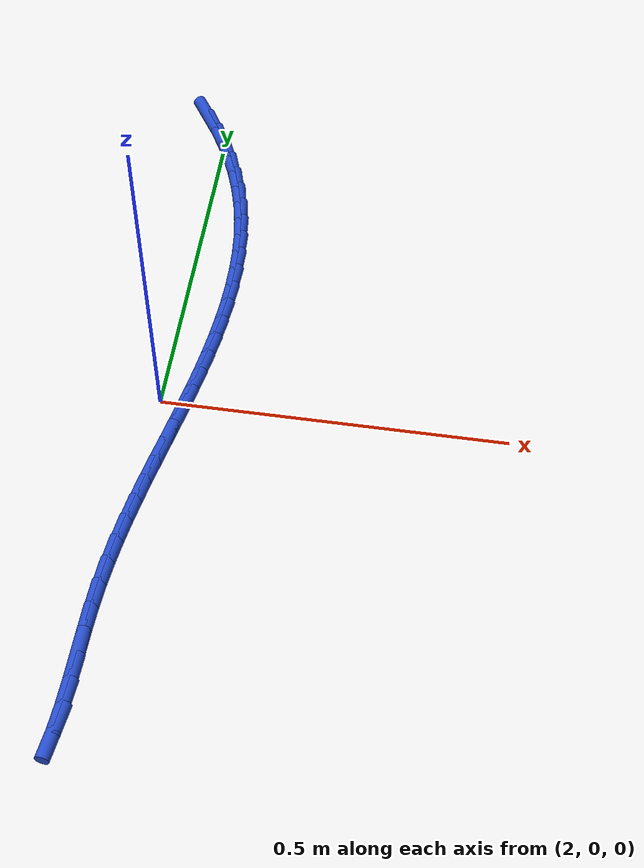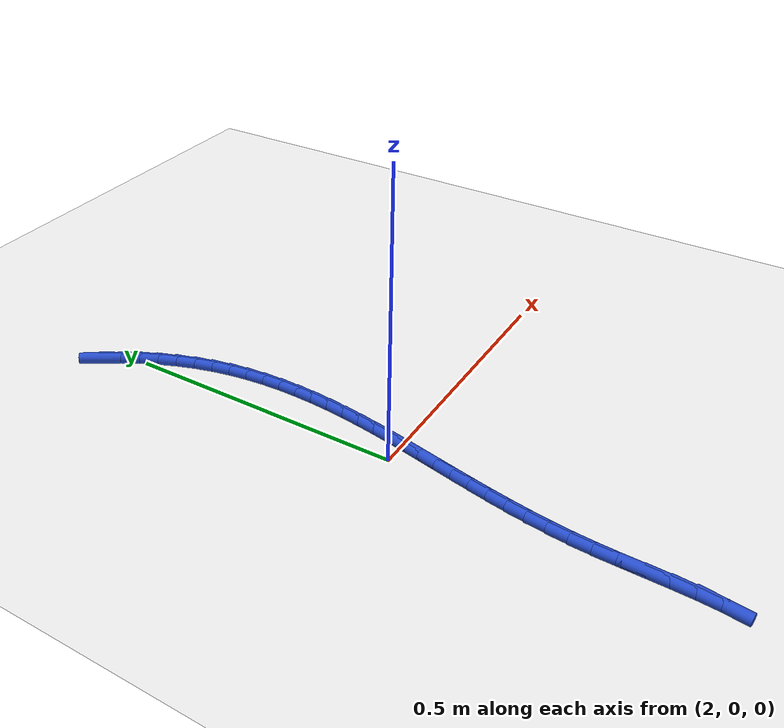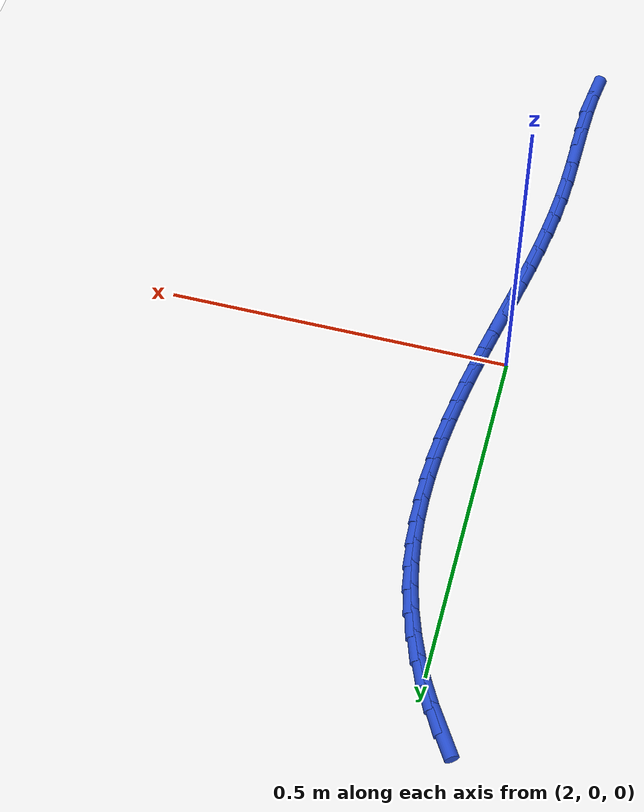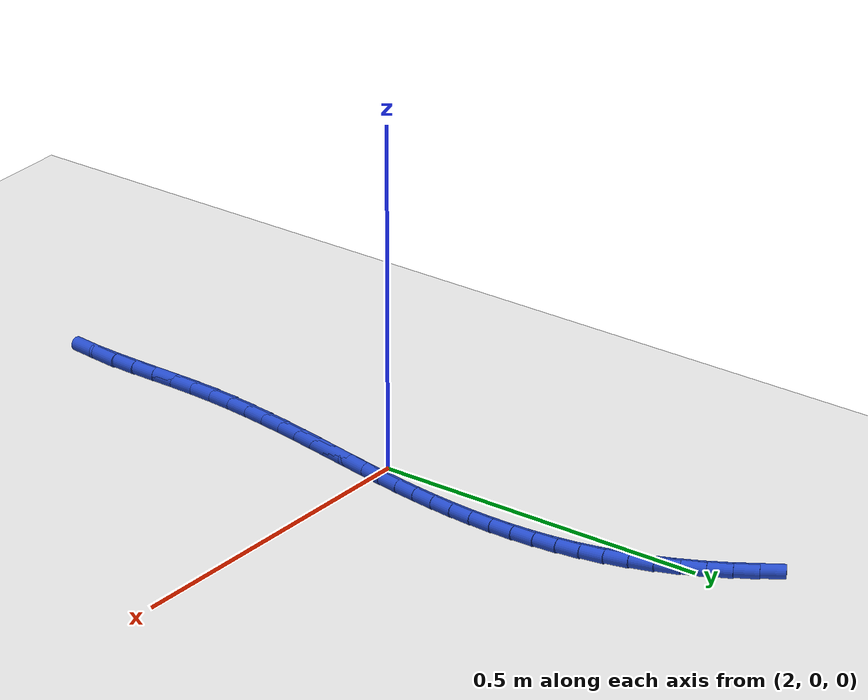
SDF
<sdf version="1.6">
 <world name="default">
  <model name="ground_plane">
   <static>1</static>
   <link name="link">
    <collision name="collision">
     <geometry><plane><normal>0 0 1</normal><size>100 100</size></plane></geometry>
     <surface><friction><ode><mu>100</mu><mu2>50</mu2></ode></friction></surface>
    </collision>
    <visual name="visual">
     <cast_shadows>0</cast_shadows>
     <geometry><plane><normal>0 0 1</normal><size>100 100</size></plane></geometry>
     <material>
      <script><uri>file://media/materials/scripts/gazebo.material</uri><name>Gazebo/WhiteGlow</name></script>
     </material>
    </visual>
   </link>
  </model>
  <model name="line">
   <link name="link_82">
    <pose>1.9631797170864609 0.5694126919476594 0.01 0 1.57 -0.9943159922002318</pose>
    <collision name="collision">
     <geometry><cylinder><radius>0.01</radius><length>0.08</length></cylinder></geometry>
    </collision>
    <visual name="visual">
     <material>
      <script><name>Gazebo/Blue</name><uri>file://media/materials/scripts/gazebo.material</uri></script>
     </material>
     <geometry><cylinder><radius>0.01</radius><length>0.08</length></cylinder></geometry>
    </visual>
   </link>
   <link name="link_83">
    <pose>1.9816686862494004 0.5409746662769291 0.01 0 1.57 -1.0533366605226369</pose>
    <collision name="collision">
     <geometry><cylinder><radius>0.01</radius><length>0.08</length></cylinder></geometry>
    </collision>
    <visual name="visual">
     <material>
      <script><name>Gazebo/Blue</name><uri>file://media/materials/scripts/gazebo.material</uri></script>
     </material>
     <geometry><cylinder><radius>0.01</radius><length>0.08</length></cylinder></geometry>
    </visual>
   </link>
   <link name="link_84">
    <pose>1.998499824800533 0.5114045189619716 0.01 0 1.57 -1.1124609755352233</pose>
    <collision name="collision">
     <geometry><cylinder><radius>0.01</radius><length>0.08</length></cylinder></geometry>
    </collision>
    <visual name="visual">
     <material>
      <script><name>Gazebo/Blue</name><uri>file://media/materials/scripts/gazebo.material</uri></script>
     </material>
     <geometry><cylinder><radius>0.01</radius><length>0.08</length></cylinder></geometry>
    </visual>
   </link>
   <link name="link_85">
    <pose>2.013576410772987 0.4808465893023069 0.01 0 1.57 -1.1721743187319096</pose>
    <collision name="collision">
     <geometry><cylinder><radius>0.01</radius><length>0.08</length></cylinder></geometry>
    </collision>
    <visual name="visual">
     <material>
      <script><name>Gazebo/Blue</name><uri>file://media/materials/scripts/gazebo.material</uri></script>
     </material>
     <geometry><cylinder><radius>0.01</radius><length>0.08</length></cylinder></geometry>
    </visual>
   </link>
   <link name="link_86">
    <pose>2.0268017221998904 0.4494452165974564 0.01 0 1.57 -1.2329522697435127</pose>
    <collision name="collision">
     <geometry><cylinder><radius>0.01</radius><length>0.08</length></cylinder></geometry>
    </collision>
    <visual name="visual">
     <material>
      <script><name>Gazebo/Blue</name><uri>file://media/materials/scripts/gazebo.material</uri></script>
     </material>
     <geometry><cylinder><radius>0.01</radius><length>0.08</length></cylinder></geometry>
    </visual>
   </link>
   <link name="link_87">
    <pose>2.0380790371143713 0.4173447401469409 0.01 0 1.57 -1.2952584561825826</pose>
    <collision name="collision">
     <geometry><cylinder><radius>0.01</radius><length>0.08</length></cylinder></geometry>
    </collision>
    <visual name="visual">
     <material>
      <script><name>Gazebo/Blue</name><uri>file://media/materials/scripts/gazebo.material</uri></script>
     </material>
     <geometry><cylinder><radius>0.01</radius><length>0.08</length></cylinder></geometry>
    </visual>
   </link>
   <link name="link_88">
    <pose>2.0473116335495587 0.38468949925028156 0.01 0 1.57 -1.358745325961788</pose>
    <collision name="collision">
     <geometry><cylinder><radius>0.01</radius><length>0.08</length></cylinder></geometry>
    </collision>
    <visual name="visual">
     <material>
      <script><name>Gazebo/Blue</name><uri>file://media/materials/scripts/gazebo.material</uri></script>
     </material>
     <geometry><cylinder><radius>0.01</radius><length>0.08</length></cylinder></geometry>
    </visual>
   </link>
   <link name="link_89">
    <pose>2.054431736173441 0.35161697733192565 0.01 0 1.57 -1.4190527988008783</pose>
    <collision name="collision">
     <geometry><cylinder><radius>0.01</radius><length>0.08</length></cylinder></geometry>
    </collision>
    <visual name="visual">
     <material>
      <script><name>Gazebo/Blue</name><uri>file://media/materials/scripts/gazebo.material</uri></script>
     </material>
     <geometry><cylinder><radius>0.01</radius><length>0.08</length></cylinder></geometry>
    </visual>
   </link>
   <link name="link_90">
    <pose>2.059537967593668 0.3182252472426111 0.01 0 1.57 -1.4744372502124479</pose>
    <collision name="collision">
     <geometry><cylinder><radius>0.01</radius><length>0.08</length></cylinder></geometry>
    </collision>
    <visual name="visual">
     <material>
      <script><name>Gazebo/Blue</name><uri>file://media/materials/scripts/gazebo.material</uri></script>
     </material>
     <geometry><cylinder><radius>0.01</radius><length>0.08</length></cylinder></geometry>
    </visual>
   </link>
   <link name="link_91">
    <pose>2.0627882926522294 0.28459832690243647 0.01 0 1.57 -1.5248682104541376</pose>
    <collision name="collision">
     <geometry><cylinder><radius>0.01</radius><length>0.08</length></cylinder></geometry>
    </collision>
    <visual name="visual">
     <material>
      <script><name>Gazebo/Blue</name><uri>file://media/materials/scripts/gazebo.material</uri></script>
     </material>
     <geometry><cylinder><radius>0.01</radius><length>0.08</length></cylinder></geometry>
    </visual>
   </link>
   <link name="link_92">
    <pose>2.0643407493513988 0.2508202169038294 0.01 0 1.57 -1.5704232663755573</pose>
    <collision name="collision">
     <geometry><cylinder><radius>0.01</radius><length>0.08</length></cylinder></geometry>
    </collision>
    <visual name="visual">
     <material>
      <script><name>Gazebo/Blue</name><uri>file://media/materials/scripts/gazebo.material</uri></script>
     </material>
     <geometry><cylinder><radius>0.01</radius><length>0.08</length></cylinder></geometry>
    </visual>
   </link>
   <link name="link_93">
    <pose>2.0643533756934462 0.2169749178392175 0.01 0 1.57 1.5303446476150522</pose>
    <collision name="collision">
     <geometry><cylinder><radius>0.01</radius><length>0.08</length></cylinder></geometry>
    </collision>
    <visual name="visual">
     <material>
      <script><name>Gazebo/Blue</name><uri>file://media/materials/scripts/gazebo.material</uri></script>
     </material>
     <geometry><cylinder><radius>0.01</radius><length>0.08</length></cylinder></geometry>
    </visual>
   </link>
   <link name="link_94">
    <pose>2.0629842096806468 0.18314643030102834 0.01 0 1.57 1.494069125580066</pose>
    <collision name="collision">
     <geometry><cylinder><radius>0.01</radius><length>0.08</length></cylinder></geometry>
    </collision>
    <visual name="visual">
     <material>
      <script><name>Gazebo/Blue</name><uri>file://media/materials/scripts/gazebo.material</uri></script>
     </material>
     <geometry><cylinder><radius>0.01</radius><length>0.08</length></cylinder></geometry>
    </visual>
   </link>
   <link name="link_95">
    <pose>2.0603912893152705 0.14941875488168938 0.01 0 1.57 1.4621523365416216</pose>
    <collision name="collision">
     <geometry><cylinder><radius>0.01</radius><length>0.08</length></cylinder></geometry>
    </collision>
    <visual name="visual">
     <material>
      <script><name>Gazebo/Blue</name><uri>file://media/materials/scripts/gazebo.material</uri></script>
     </material>
     <geometry><cylinder><radius>0.01</radius><length>0.08</length></cylinder></geometry>
    </visual>
   </link>
   <link name="link_96">
    <pose>2.0567326525995924 0.11587589217362879 0.01 0 1.57 1.4344147049417155</pose>
    <collision name="collision">
     <geometry><cylinder><radius>0.01</radius><length>0.08</length></cylinder></geometry>
    </collision>
    <visual name="visual">
     <material>
      <script><name>Gazebo/Blue</name><uri>file://media/materials/scripts/gazebo.material</uri></script>
     </material>
     <geometry><cylinder><radius>0.01</radius><length>0.08</length></cylinder></geometry>
    </visual>
   </link>
   <link name="link_97">
    <pose>2.052166337535884 0.08260184276927318 0.01 0 1.57 1.4107457521082938</pose>
    <collision name="collision">
     <geometry><cylinder><radius>0.01</radius><length>0.08</length></cylinder></geometry>
    </collision>
    <visual name="visual">
     <material>
      <script><name>Gazebo/Blue</name><uri>file://media/materials/scripts/gazebo.material</uri></script>
     </material>
     <geometry><cylinder><radius>0.01</radius><length>0.08</length></cylinder></geometry>
    </visual>
   </link>
   <link name="link_98">
    <pose>2.0468499308726766 0.04966891762733959 0.01 0 1.57 1.3915043588336706</pose>
    <collision name="collision">
     <geometry><cylinder><radius>0.01</radius><length>0.08</length></cylinder></geometry>
    </collision>
    <visual name="visual">
     <material>
      <script><name>Gazebo/Blue</name><uri>file://media/materials/scripts/gazebo.material</uri></script>
     </material>
     <geometry><cylinder><radius>0.01</radius><length>0.08</length></cylinder></geometry>
    </visual>
   </link>
   <link name="link_99">
    <pose>2.040936922008112 0.017043286702062403 0.01 0 1.57 1.3770658626826506</pose>
    <collision name="collision">
     <geometry><cylinder><radius>0.01</radius><length>0.08</length></cylinder></geometry>
    </collision>
    <visual name="visual">
     <material>
      <script><name>Gazebo/Blue</name><uri>file://media/materials/scripts/gazebo.material</uri></script>
     </material>
     <geometry><cylinder><radius>0.01</radius><length>0.08</length></cylinder></geometry>
    </visual>
   </link>
   <link name="link_100">
    <pose>2.0345786164475417 -0.015365453337969784 0.01 0 1.57 1.3675769073095225</pose>
    <collision name="collision">
     <geometry><cylinder><radius>0.01</radius><length>0.08</length></cylinder></geometry>
    </collision>
    <visual name="visual">
     <material>
      <script><name>Gazebo/Blue</name><uri>file://media/materials/scripts/gazebo.material</uri></script>
     </material>
     <geometry><cylinder><radius>0.01</radius><length>0.08</length></cylinder></geometry>
    </visual>
   </link>
   <link name="link_101">
    <pose>2.027926299311997 -0.04764823387578632 0.01 0 1.57 1.3631206648653513</pose>
    <collision name="collision">
     <geometry><cylinder><radius>0.01</radius><length>0.08</length></cylinder></geometry>
    </collision>
    <visual name="visual">
     <material>
      <script><name>Gazebo/Blue</name><uri>file://media/materials/scripts/gazebo.material</uri></script>
     </material>
     <geometry><cylinder><radius>0.01</radius><length>0.08</length></cylinder></geometry>
    </visual>
   </link>
   <link name="link_102">
    <pose>2.0211312557225067 -0.07989598629441656 0.01 0 1.57 1.3637235715213103</pose>
    <collision name="collision">
     <geometry><cylinder><radius>0.01</radius><length>0.08</length></cylinder></geometry>
    </collision>
    <visual name="visual">
     <material>
      <script><name>Gazebo/Blue</name><uri>file://media/materials/scripts/gazebo.material</uri></script>
     </material>
     <geometry><cylinder><radius>0.01</radius><length>0.08</length></cylinder></geometry>
    </visual>
   </link>
   <link name="link_103">
    <pose>2.0143447708001 -0.11219964197688986 0.01 0 1.57 1.3693581610088106</pose>
    <collision name="collision">
     <geometry><cylinder><radius>0.01</radius><length>0.08</length></cylinder></geometry>
    </collision>
    <visual name="visual">
     <material>
      <script><name>Gazebo/Blue</name><uri>file://media/materials/scripts/gazebo.material</uri></script>
     </material>
     <geometry><cylinder><radius>0.01</radius><length>0.08</length></cylinder></geometry>
    </visual>
   </link>
   <link name="link_104">
    <pose>2.007718129665809 -0.1446501323062356 0.01 0 1.57 1.3799435353276244</pose>
    <collision name="collision">
     <geometry><cylinder><radius>0.01</radius><length>0.08</length></cylinder></geometry>
    </collision>
    <visual name="visual">
     <material>
      <script><name>Gazebo/Blue</name><uri>file://media/materials/scripts/gazebo.material</uri></script>
     </material>
     <geometry><cylinder><radius>0.01</radius><length>0.08</length></cylinder></geometry>
    </visual>
   </link>
   <link name="link_105">
    <pose>2.0014026174406623 -0.17733838866548307 0.01 0 1.57 1.3953435976825357</pose>
    <collision name="collision">
     <geometry><cylinder><radius>0.01</radius><length>0.08</length></cylinder></geometry>
    </collision>
    <visual name="visual">
     <material>
      <script><name>Gazebo/Blue</name><uri>file://media/materials/scripts/gazebo.material</uri></script>
     </material>
     <geometry><cylinder><radius>0.01</radius><length>0.08</length></cylinder></geometry>
    </visual>
   </link>
   <link name="link_106">
    <pose>1.9955495192456898 -0.21035534243766163 0.01 0 1.57 1.41536365106546</pose>
    <collision name="collision">
     <geometry><cylinder><radius>0.01</radius><length>0.08</length></cylinder></geometry>
    </collision>
    <visual name="visual">
     <material>
      <script><name>Gazebo/Blue</name><uri>file://media/materials/scripts/gazebo.material</uri></script>
     </material>
     <geometry><cylinder><radius>0.01</radius><length>0.08</length></cylinder></geometry>
    </visual>
   </link>
   <link name="link_107">
    <pose>1.990310120201921 -0.2437919250058006 0.01 0 1.57 1.4397463951365768</pose>
    <collision name="collision">
     <geometry><cylinder><radius>0.01</radius><length>0.08</length></cylinder></geometry>
    </collision>
    <visual name="visual">
     <material>
      <script><name>Gazebo/Blue</name><uri>file://media/materials/scripts/gazebo.material</uri></script>
     </material>
     <geometry><cylinder><radius>0.01</radius><length>0.08</length></cylinder></geometry>
    </visual>
   </link>
   <link name="link_108">
    <pose>1.9858357054303866 -0.27773906775292934 0.01 0 1.57 1.4681686920153485</pose>
    <collision name="collision">
     <geometry><cylinder><radius>0.01</radius><length>0.08</length></cylinder></geometry>
    </collision>
    <visual name="visual">
     <material>
      <script><name>Gazebo/Blue</name><uri>file://media/materials/scripts/gazebo.material</uri></script>
     </material>
     <geometry><cylinder><radius>0.01</radius><length>0.08</length></cylinder></geometry>
    </visual>
   </link>
   <link name="link_109">
    <pose>1.9822775600521165 -0.31228770206207734 0.01 0 1.57 1.500240648873536</pose>
    <collision name="collision">
     <geometry><cylinder><radius>0.01</radius><length>0.08</length></cylinder></geometry>
    </collision>
    <visual name="visual">
     <material>
      <script><name>Gazebo/Blue</name><uri>file://media/materials/scripts/gazebo.material</uri></script>
     </material>
     <geometry><cylinder><radius>0.01</radius><length>0.08</length></cylinder></geometry>
    </visual>
   </link>
   <link name="link_110">
    <pose>1.9797869691881405 -0.3475287593162738 0.01 0 1.57 1.5323072212261395</pose>
    <collision name="collision">
     <geometry><cylinder><radius>0.01</radius><length>0.08</length></cylinder></geometry>
    </collision>
    <visual name="visual">
     <material>
      <script><name>Gazebo/Blue</name><uri>file://media/materials/scripts/gazebo.material</uri></script>
     </material>
     <geometry><cylinder><radius>0.01</radius><length>0.08</length></cylinder></geometry>
    </visual>
   </link>
   <link name="link_111">
    <pose>1.9784026821586433 -0.3834766821221525 0.01 0 1.57 1.5501188149864995</pose>
    <collision name="collision">
     <geometry><cylinder><radius>0.01</radius><length>0.08</length></cylinder></geometry>
    </collision>
    <visual name="visual">
     <material>
      <script><name>Gazebo/Blue</name><uri>file://media/materials/scripts/gazebo.material</uri></script>
     </material>
     <geometry><cylinder><radius>0.01</radius><length>0.08</length></cylinder></geometry>
    </visual>
   </link>
   <link name="link_112">
    <pose>1.9776515410790734 -0.4197979779810342 0.01 0 1.57 1.5504851179105144</pose>
    <collision name="collision">
     <geometry><cylinder><radius>0.01</radius><length>0.08</length></cylinder></geometry>
    </collision>
    <visual name="visual">
     <material>
      <script><name>Gazebo/Blue</name><uri>file://media/materials/scripts/gazebo.material</uri></script>
     </material>
     <geometry><cylinder><radius>0.01</radius><length>0.08</length></cylinder></geometry>
    </visual>
   </link>
   <link name="link_113">
    <pose>1.9769149087008981 -0.4560602744070878 0.01 0 1.57 1.5333317124147539</pose>
    <collision name="collision">
     <geometry><cylinder><radius>0.01</radius><length>0.08</length></cylinder></geometry>
    </collision>
    <visual name="visual">
     <material>
      <script><name>Gazebo/Blue</name><uri>file://media/materials/scripts/gazebo.material</uri></script>
     </material>
     <geometry><cylinder><radius>0.01</radius><length>0.08</length></cylinder></geometry>
    </visual>
   </link>
   <link name="link_114">
    <pose>1.975574137705074 -0.4918311920697168 0.01 0 1.57 1.4973628723346373</pose>
    <collision name="collision">
     <geometry><cylinder><radius>0.01</radius><length>0.08</length></cylinder></geometry>
    </collision>
    <visual name="visual">
     <material>
      <script><name>Gazebo/Blue</name><uri>file://media/materials/scripts/gazebo.material</uri></script>
     </material>
     <geometry><cylinder><radius>0.01</radius><length>0.08</length></cylinder></geometry>
    </visual>
   </link>
   <link name="link_115">
    <pose>1.9730105807725558 -0.5266783516383245 0.01 0 1.57 1.4400195095313344</pose>
    <collision name="collision">
     <geometry><cylinder><radius>0.01</radius><length>0.08</length></cylinder></geometry>
    </collision>
    <visual name="visual">
     <material>
      <script><name>Gazebo/Blue</name><uri>file://media/materials/scripts/gazebo.material</uri></script>
     </material>
     <geometry><cylinder><radius>0.01</radius><length>0.08</length></cylinder></geometry>
    </visual>
   </link>
  </model>
 </world>
</sdf>
